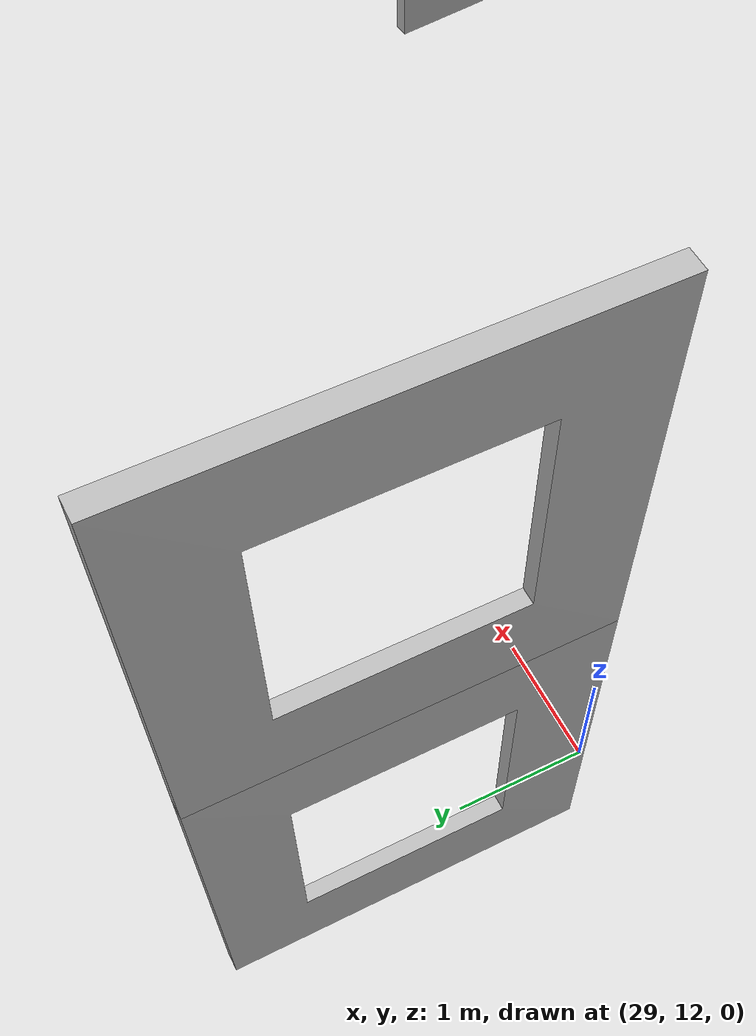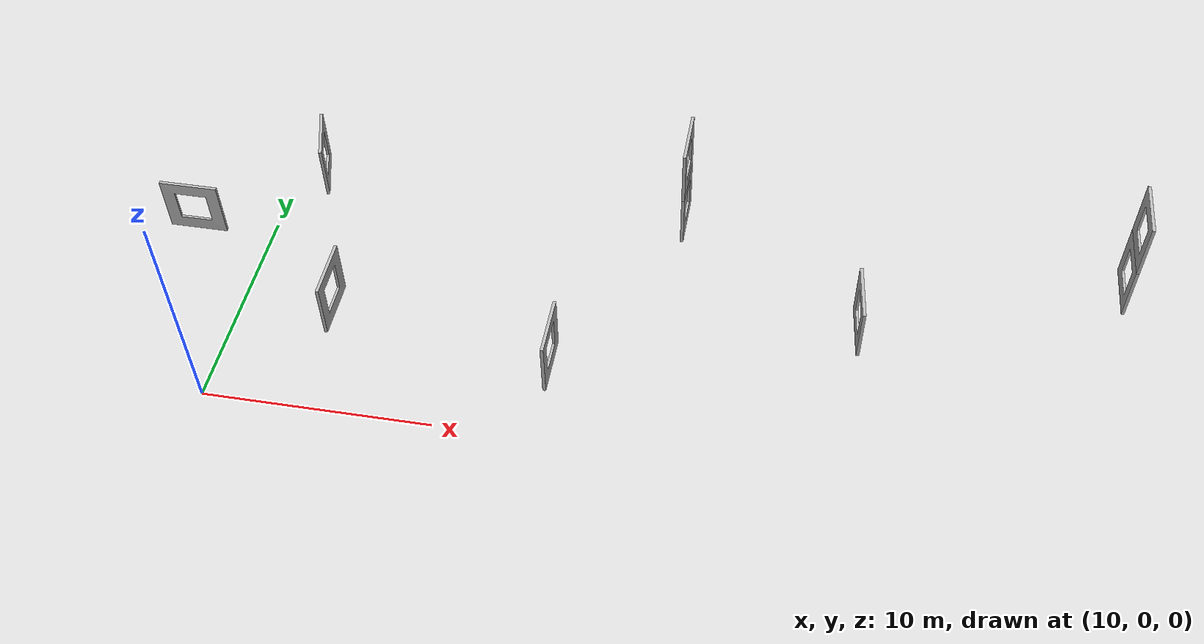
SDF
<sdf version="1.5">
 <world name="default">
  <plugin name="mrs_gazebo_static_transform_republisher_plugin" filename="libMrsGazeboCommonResources_StaticTransformRepublisher.so"/>
  <spherical_coordinates>
   <surface_model>EARTH_WGS84</surface_model>
   <latitude_deg>47.397743</latitude_deg>
   <longitude_deg>8.545594</longitude_deg>
   <elevation>0.0</elevation>
   <heading_deg>0</heading_deg>
  </spherical_coordinates>
  <physics name="default_physics" default="0" type="ode">
   <gravity>0 0 -9.8066</gravity>
   <ode>
    <solver>
     <type>quick</type>
     <iters>10</iters>
     <sor>1.3</sor>
     <use_dynamic_moi_rescaling>0</use_dynamic_moi_rescaling>
    </solver>
    <constraints>
     <cfm>0</cfm>
     <erp>0.2</erp>
     <contact_max_correcting_vel>250</contact_max_correcting_vel>
     <contact_surface_layer>0.004</contact_surface_layer>
    </constraints>
   </ode>
   <max_step_size>0.004</max_step_size>
   <real_time_factor>1</real_time_factor>
   <real_time_update_rate>250</real_time_update_rate>
   <magnetic_field>6.0e-06 2.3e-05 -4.2e-05</magnetic_field>
  </physics>
  <scene><shadows>false</shadows></scene>
  <light name="sun" type="directional">
   <pose>0 0 1000 0.4 0.2 0</pose>
   <diffuse>1 1 1 1</diffuse>
   <specular>0.6 0.6 0.6 1</specular>
   <direction>0.1 0.1 -0.9</direction>
   <attenuation>
    <range>20</range>
    <constant>0.5</constant>
    <linear>0.01</linear>
    <quadratic>0.001</quadratic>
   </attenuation>
  </light>
  <model name="the_void">
   <static>1</static>
   <link name="link">
    <pose>0 0 0.1 0 -0 0</pose>
    <visual name="the_void">
     <pose>0 0 2 0 -0 0</pose>
     <geometry><sphere><radius>0.25</radius></sphere></geometry>
     <material>
      <script><uri>file://media/materials/scripts/Gazebo.material</uri><name>Gazebo/Black</name></script>
     </material>
    </visual>
   </link>
   <pose>-1000 -1000 0 0 0 0</pose>
  </model>
  <plugin name="mrs_gazebo_rviz_cam_synchronizer" filename="libMrsGazeboCommonResources_RvizCameraSynchronizer.so">
   <target_frame_id>gazebo_user_camera</target_frame_id>
   <world_origin_frame_id>uav1/gps_origin</world_origin_frame_id>
   <frame_to_follow>uav1</frame_to_follow>
  </plugin>
  <include><uri>model://gate</uri><pose>11.33 13.65 1.36 0 0 1.850049</pose><name>gate1</name></include>
  <include><uri>model://gate</uri><pose>28.78 13.58 3.84 0 0 1.57</pose><name>gate2top</name></include>
  <include><uri>model://gate</uri><pose>28.78 13.58 1.14 0 0 1.57</pose><name>gate2bottom</name></include>
  <include><uri>model://gate</uri><pose>48.83 12.50 3.77 0 0 1.57</pose><name>gate3top</name></include>
  <include><uri>model://gate</uri><pose>48.83 12.50 1.07 0 0 1.57</pose><name>gate3bottom</name></include>
  <include><uri>model://gate</uri><pose>37.14 8.07 1.20 0 0 1.675516</pose><name>gate4</name></include>
  <include><uri>model://gate</uri><pose>24.27 3.88 1.37 0 0 1.57</pose><name>gate5</name></include>
  <include><uri>model://gate</uri><pose>14.20 5.39 1.45 0 0 1.57</pose><name>gate6</name></include>
  <include><uri>model://gate</uri><pose>6.42 9.29 1.39 0 0 0</pose><name>gate7</name></include>
 </world>
</sdf>

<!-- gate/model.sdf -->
<sdf version="1.6">
  <model name="gate">
    <static>true</static>
    <link name="link">
      <visual name="visual">
        <geometry>
          <mesh>
            <scale>1 1 1</scale>
            <uri>model://gate/meshes/gate.dae</uri>
          </mesh>
        </geometry>
      </visual>
    </link>
  </model>
</sdf>
